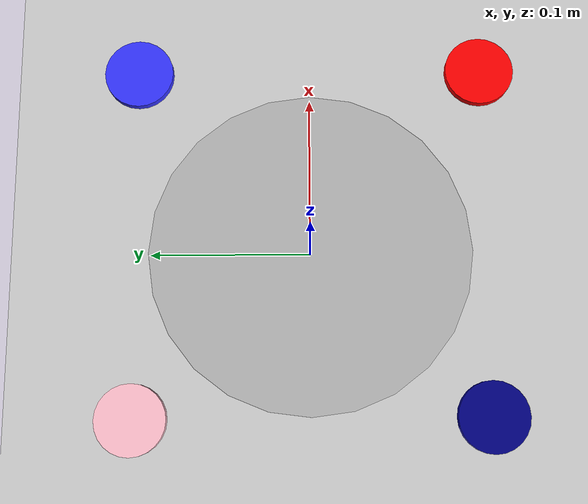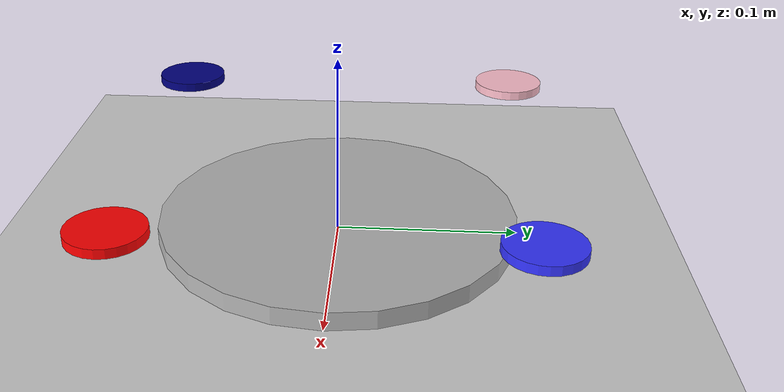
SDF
<?xml version="1.0"?>
<sdf version="1.6">
  <world name="default">
    <plugin name="gazebo_ros_state" filename="libgazebo_ros_state.so">
      <ros>
        <namespace>/demo</namespace>
        <remapping>model_states:=model_states_demo</remapping>
        <remapping>link_states:=link_states_demo</remapping>
      </ros>
      <update_rate>1.0</update_rate>
    </plugin>

    <model name="quadrotor">
      <!-- Quadrotor Structure  -->
      <static>false</static>

      <!-- base_link -->
      <link name="base_link">
        <inertial>
          <mass>1.0</mass>
          <inertia>
            <ixx>0.02</ixx>
            <iyy>0.02</iyy>
            <izz>0.04</izz>
          </inertia>
        </inertial>
        <visual name="base_visual">
          <geometry>
            <cylinder>
              <radius>0.1</radius>
              <length>0.02</length>
            </cylinder>
          </geometry>
          <material>
            <ambient>0.3 0.3 0.3 1</ambient>
            <diffuse>0.7 0.7 0.7 1</diffuse>
          </material>
        </visual>
        <collision name="base_collision">
          <geometry>
            <cylinder>
              <radius>0.1</radius>
              <length>0.02</length>
            </cylinder>
          </geometry>
       </collision>
      </link>

      <!-- four propeller -->
      <!-- propeller_front_left -->
      <link name="propeller_front_left">
        <pose>0.1 0.1 0.05 0 0 0</pose>
        <inertial>
          <mass>0.01</mass>
          <inertia>
            <ixx>0.00001</ixx>
            <iyy>0.00001</iyy>
            <izz>0.00002</izz>
          </inertia>
        </inertial>
        <visual name="propeller_visual">
          <geometry>
            <cylinder>
              <radius>0.02</radius>
              <length>0.005</length>
            </cylinder>
          </geometry>
          <material>
            <ambient>0.2 0.2 1 1</ambient>
            <diffuse>0.2 0.2 1 1</diffuse>
          </material>
        </visual>
      </link>

      <!-- The rest of three propeller -->
      <link name="propeller_front_right">
        <pose>0.1 -0.1 0.05 0 0 0</pose>
        <inertial>
          <mass>0.01</mass>
          <inertia>
            <ixx>0.00001</ixx>
            <iyy>0.00001</iyy>
            <izz>0.00002</izz>
          </inertia>
        </inertial>
        <visual name="propeller_visual">
          <geometry>
            <cylinder>
              <radius>0.02</radius>
              <length>0.005</length>
            </cylinder>
          </geometry>
          <material>
            <ambient>1 0 0 1</ambient>
            <diffuse>1 0 0 1</diffuse>
          </material>
        </visual>
      </link>

      <link name="propeller_back_left">
        <pose>-0.1 0.1 0.05 0 0 0</pose>
        <inertial>
          <mass>0.01</mass>
          <inertia>
            <ixx>0.00001</ixx>
            <iyy>0.00001</iyy>
            <izz>0.00002</izz>
          </inertia>
        </inertial>
        <visual name="propeller_visual">
          <geometry>
            <cylinder>
              <radius>0.02</radius>
              <length>0.005</length>
            </cylinder>
          </geometry>
          <material>
            <ambient>1.0 0.75 0.8 1.0</ambient>
            <diffuse>1.0 0.75 0.8 1.0</diffuse>
          </material>
        </visual>
      </link>

      <link name="propeller_back_right">
        <pose>-0.1 -0.1 0.05 0 0 0</pose>
        <inertial>
          <mass>0.01</mass>
          <inertia>
            <ixx>0.00001</ixx>
            <iyy>0.00001</iyy>
            <izz>0.00002</izz>
          </inertia>
        </inertial>
        <visual name="propeller_visual">
          <geometry>
            <cylinder>
              <radius>0.02</radius>
              <length>0.005</length>
            </cylinder>
          </geometry>
          <material>
            <ambient>0.0 0.0 0.5 1.0</ambient>
            <diffuse>0.0 0.0 0.5 1.0</diffuse>
          </material>
        </visual>
      </link>

      <!-- add joints -->
      <joint name="joint_front_left" type="fixed">
        <parent>base_link</parent>
        <child>propeller_front_left</child>
      </joint>

      <joint name="joint_front_right" type="fixed">
        <parent>base_link</parent>
        <child>propeller_front_right</child>
      </joint>

      <joint name="joint_back_left" type="fixed">
        <parent>base_link</parent>
        <child>propeller_back_left</child>
      </joint>

      <joint name="joint_back_right" type="fixed">
        <parent>base_link</parent>
        <child>propeller_back_right</child>
      </joint>
    </model>

    <include>
      <uri>model://ground_plane</uri>
    </include>
    <include>
      <uri>model://sun</uri>
    </include>

  </world>
</sdf>
